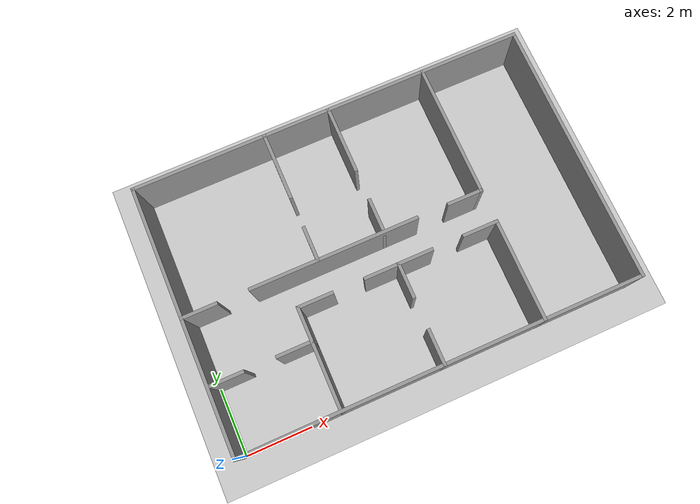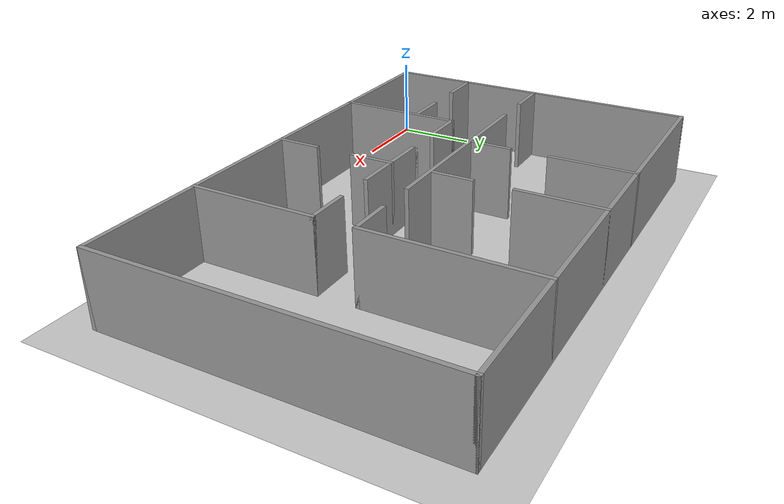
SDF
<sdf version="1.6">
 <world name="default">
  <include><uri>model://sun</uri></include>
  <include><uri>model://ground_plane</uri></include>
  <model name="wall_1">
   <pose>6 0 0.9 0 0 0</pose>
   <link name="link">
    <inertial>
     <mass>1</mass>
     <inertia>
      <ixx>0.166667</ixx>
      <ixy>0</ixy>
      <ixz>0</ixz>
      <iyy>0.166667</iyy>
      <iyz>0</iyz>
      <izz>0.166667</izz>
     </inertia>
    </inertial>
    <visual name="visual">
     <geometry><box><size>12.1 0.1 1.8</size></box></geometry>
     <material>
      <script><name>Gazebo/Grey</name><uri>file://media/materials/scripts/gazebo.material</uri></script>
      <ambient>0.3 0.3 0.3 1</ambient>
      <diffuse>0.7 0.7 0.7 1</diffuse>
      <specular>0.01 0.01 0.01 1</specular>
      <emissive>0 0 0 1</emissive>
      <shader type="vertex"><normal_map>__default__</normal_map></shader>
     </material>
    </visual>
    <collision name="collision">
     <geometry><box><size>12.1 0.1 1.8</size></box></geometry>
     <surface>
      <friction>
       <ode><mu>1</mu><mu2>1</mu2><fdir1>0 0 0</fdir1><slip1>0</slip1><slip2>0</slip2></ode>
       <torsional>
        <coefficient>1</coefficient>
        <patch_radius>0</patch_radius>
        <surface_radius>0</surface_radius>
        <use_patch_radius>1</use_patch_radius>
        <ode><slip>0</slip></ode>
       </torsional>
      </friction>
      <bounce><restitution_coefficient>0</restitution_coefficient><threshold>1e+06</threshold></bounce>
      <contact>
       <collide_without_contact>0</collide_without_contact>
       <collide_without_contact_bitmask>1</collide_without_contact_bitmask>
       <collide_bitmask>1</collide_bitmask>
       <ode>
        <soft_cfm>0</soft_cfm>
        <soft_erp>0.2</soft_erp>
        <kp>1e+13</kp>
        <kd>1</kd>
        <max_vel>0.01</max_vel>
        <min_depth>0</min_depth>
       </ode>
       <bullet>
        <split_impulse>1</split_impulse>
        <split_impulse_penetration_threshold>-0.01</split_impulse_penetration_threshold>
        <soft_cfm>0</soft_cfm>
        <soft_erp>0.2</soft_erp>
        <kp>1e+13</kp>
        <kd>1</kd>
       </bullet>
      </contact>
     </surface>
    </collision>
   </link>
   <static>1</static>
  </model>
  <model name="wall_2">
   <pose>0.5 2 0.9 0 0 0</pose>
   <link name="link">
    <inertial>
     <mass>1</mass>
     <inertia>
      <ixx>0.166667</ixx>
      <ixy>0</ixy>
      <ixz>0</ixz>
      <iyy>0.166667</iyy>
      <iyz>0</iyz>
      <izz>0.166667</izz>
     </inertia>
    </inertial>
    <visual name="visual">
     <geometry><box><size>1.1 0.1 1.8</size></box></geometry>
     <material>
      <script><name>Gazebo/Grey</name><uri>file://media/materials/scripts/gazebo.material</uri></script>
      <ambient>0.3 0.3 0.3 1</ambient>
      <diffuse>0.7 0.7 0.7 1</diffuse>
      <specular>0.01 0.01 0.01 1</specular>
      <emissive>0 0 0 1</emissive>
      <shader type="vertex"><normal_map>__default__</normal_map></shader>
     </material>
    </visual>
    <collision name="collision">
     <geometry><box><size>1.1 0.1 1.8</size></box></geometry>
     <surface>
      <friction>
       <ode><mu>1</mu><mu2>1</mu2><fdir1>0 0 0</fdir1><slip1>0</slip1><slip2>0</slip2></ode>
       <torsional>
        <coefficient>1</coefficient>
        <patch_radius>0</patch_radius>
        <surface_radius>0</surface_radius>
        <use_patch_radius>1</use_patch_radius>
        <ode><slip>0</slip></ode>
       </torsional>
      </friction>
      <bounce><restitution_coefficient>0</restitution_coefficient><threshold>1e+06</threshold></bounce>
      <contact>
       <collide_without_contact>0</collide_without_contact>
       <collide_without_contact_bitmask>1</collide_without_contact_bitmask>
       <collide_bitmask>1</collide_bitmask>
       <ode>
        <soft_cfm>0</soft_cfm>
        <soft_erp>0.2</soft_erp>
        <kp>1e+13</kp>
        <kd>1</kd>
        <max_vel>0.01</max_vel>
        <min_depth>0</min_depth>
       </ode>
       <bullet>
        <split_impulse>1</split_impulse>
        <split_impulse_penetration_threshold>-0.01</split_impulse_penetration_threshold>
        <soft_cfm>0</soft_cfm>
        <soft_erp>0.2</soft_erp>
        <kp>1e+13</kp>
        <kd>1</kd>
       </bullet>
      </contact>
     </surface>
    </collision>
   </link>
   <static>1</static>
  </model>
  <model name="wall_3">
   <pose>2.5 2 0.9 0 0 0</pose>
   <link name="link">
    <inertial>
     <mass>1</mass>
     <inertia>
      <ixx>0.166667</ixx>
      <ixy>0</ixy>
      <ixz>0</ixz>
      <iyy>0.166667</iyy>
      <iyz>0</iyz>
      <izz>0.166667</izz>
     </inertia>
    </inertial>
    <visual name="visual">
     <geometry><box><size>1.1 0.1 1.8</size></box></geometry>
     <material>
      <script><name>Gazebo/Grey</name><uri>file://media/materials/scripts/gazebo.material</uri></script>
      <ambient>0.3 0.3 0.3 1</ambient>
      <diffuse>0.7 0.7 0.7 1</diffuse>
      <specular>0.01 0.01 0.01 1</specular>
      <emissive>0 0 0 1</emissive>
      <shader type="vertex"><normal_map>__default__</normal_map></shader>
     </material>
    </visual>
    <collision name="collision">
     <geometry><box><size>1.1 0.1 1.8</size></box></geometry>
     <surface>
      <friction>
       <ode><mu>1</mu><mu2>1</mu2><fdir1>0 0 0</fdir1><slip1>0</slip1><slip2>0</slip2></ode>
       <torsional>
        <coefficient>1</coefficient>
        <patch_radius>0</patch_radius>
        <surface_radius>0</surface_radius>
        <use_patch_radius>1</use_patch_radius>
        <ode><slip>0</slip></ode>
       </torsional>
      </friction>
      <bounce><restitution_coefficient>0</restitution_coefficient><threshold>1e+06</threshold></bounce>
      <contact>
       <collide_without_contact>0</collide_without_contact>
       <collide_without_contact_bitmask>1</collide_without_contact_bitmask>
       <collide_bitmask>1</collide_bitmask>
       <ode>
        <soft_cfm>0</soft_cfm>
        <soft_erp>0.2</soft_erp>
        <kp>1e+13</kp>
        <kd>1</kd>
        <max_vel>0.01</max_vel>
        <min_depth>0</min_depth>
       </ode>
       <bullet>
        <split_impulse>1</split_impulse>
        <split_impulse_penetration_threshold>-0.01</split_impulse_penetration_threshold>
        <soft_cfm>0</soft_cfm>
        <soft_erp>0.2</soft_erp>
        <kp>1e+13</kp>
        <kd>1</kd>
       </bullet>
      </contact>
     </surface>
    </collision>
   </link>
   <static>1</static>
  </model>
  <model name="wall_4">
   <pose>3.5 3 0.9 0 0 0</pose>
   <link name="link">
    <inertial>
     <mass>1</mass>
     <inertia>
      <ixx>0.166667</ixx>
      <ixy>0</ixy>
      <ixz>0</ixz>
      <iyy>0.166667</iyy>
      <iyz>0</iyz>
      <izz>0.166667</izz>
     </inertia>
    </inertial>
    <visual name="visual">
     <geometry><box><size>1.1 0.1 1.8</size></box></geometry>
     <material>
      <script><name>Gazebo/Grey</name><uri>file://media/materials/scripts/gazebo.material</uri></script>
      <ambient>0.3 0.3 0.3 1</ambient>
      <diffuse>0.7 0.7 0.7 1</diffuse>
      <specular>0.01 0.01 0.01 1</specular>
      <emissive>0 0 0 1</emissive>
      <shader type="vertex"><normal_map>__default__</normal_map></shader>
     </material>
    </visual>
    <collision name="collision">
     <geometry><box><size>1.1 0.1 1.8</size></box></geometry>
     <surface>
      <friction>
       <ode><mu>1</mu><mu2>1</mu2><fdir1>0 0 0</fdir1><slip1>0</slip1><slip2>0</slip2></ode>
       <torsional>
        <coefficient>1</coefficient>
        <patch_radius>0</patch_radius>
        <surface_radius>0</surface_radius>
        <use_patch_radius>1</use_patch_radius>
        <ode><slip>0</slip></ode>
       </torsional>
      </friction>
      <bounce><restitution_coefficient>0</restitution_coefficient><threshold>1e+06</threshold></bounce>
      <contact>
       <collide_without_contact>0</collide_without_contact>
       <collide_without_contact_bitmask>1</collide_without_contact_bitmask>
       <collide_bitmask>1</collide_bitmask>
       <ode>
        <soft_cfm>0</soft_cfm>
        <soft_erp>0.2</soft_erp>
        <kp>1e+13</kp>
        <kd>1</kd>
        <max_vel>0.01</max_vel>
        <min_depth>0</min_depth>
       </ode>
       <bullet>
        <split_impulse>1</split_impulse>
        <split_impulse_penetration_threshold>-0.01</split_impulse_penetration_threshold>
        <soft_cfm>0</soft_cfm>
        <soft_erp>0.2</soft_erp>
        <kp>1e+13</kp>
        <kd>1</kd>
       </bullet>
      </contact>
     </surface>
    </collision>
   </link>
   <static>1</static>
  </model>
  <model name="wall_5">
   <pose>6 3 0.9 0 0 0</pose>
   <link name="link">
    <inertial>
     <mass>1</mass>
     <inertia>
      <ixx>0.166667</ixx>
      <ixy>0</ixy>
      <ixz>0</ixz>
      <iyy>0.166667</iyy>
      <iyz>0</iyz>
      <izz>0.166667</izz>
     </inertia>
    </inertial>
    <visual name="visual">
     <geometry><box><size>2.1 0.1 1.8</size></box></geometry>
     <material>
      <script><name>Gazebo/Grey</name><uri>file://media/materials/scripts/gazebo.material</uri></script>
      <ambient>0.3 0.3 0.3 1</ambient>
      <diffuse>0.7 0.7 0.7 1</diffuse>
      <specular>0.01 0.01 0.01 1</specular>
      <emissive>0 0 0 1</emissive>
      <shader type="vertex"><normal_map>__default__</normal_map></shader>
     </material>
    </visual>
    <collision name="collision">
     <geometry><box><size>2.1 0.1 1.8</size></box></geometry>
     <surface>
      <friction>
       <ode><mu>1</mu><mu2>1</mu2><fdir1>0 0 0</fdir1><slip1>0</slip1><slip2>0</slip2></ode>
       <torsional>
        <coefficient>1</coefficient>
        <patch_radius>0</patch_radius>
        <surface_radius>0</surface_radius>
        <use_patch_radius>1</use_patch_radius>
        <ode><slip>0</slip></ode>
       </torsional>
      </friction>
      <bounce><restitution_coefficient>0</restitution_coefficient><threshold>1e+06</threshold></bounce>
      <contact>
       <collide_without_contact>0</collide_without_contact>
       <collide_without_contact_bitmask>1</collide_without_contact_bitmask>
       <collide_bitmask>1</collide_bitmask>
       <ode>
        <soft_cfm>0</soft_cfm>
        <soft_erp>0.2</soft_erp>
        <kp>1e+13</kp>
        <kd>1</kd>
        <max_vel>0.01</max_vel>
        <min_depth>0</min_depth>
       </ode>
       <bullet>
        <split_impulse>1</split_impulse>
        <split_impulse_penetration_threshold>-0.01</split_impulse_penetration_threshold>
        <soft_cfm>0</soft_cfm>
        <soft_erp>0.2</soft_erp>
        <kp>1e+13</kp>
        <kd>1</kd>
       </bullet>
      </contact>
     </surface>
    </collision>
   </link>
   <static>1</static>
  </model>
  <model name="wall_6">
   <pose>8.5 3 0.9 0 0 0</pose>
   <link name="link">
    <inertial>
     <mass>1</mass>
     <inertia>
      <ixx>0.166667</ixx>
      <ixy>0</ixy>
      <ixz>0</ixz>
      <iyy>0.166667</iyy>
      <iyz>0</iyz>
      <izz>0.166667</izz>
     </inertia>
    </inertial>
    <visual name="visual">
     <geometry><box><size>1.1 0.1 1.8</size></box></geometry>
     <material>
      <script><name>Gazebo/Grey</name><uri>file://media/materials/scripts/gazebo.material</uri></script>
      <ambient>0.3 0.3 0.3 1</ambient>
      <diffuse>0.7 0.7 0.7 1</diffuse>
      <specular>0.01 0.01 0.01 1</specular>
      <emissive>0 0 0 1</emissive>
      <shader type="vertex"><normal_map>__default__</normal_map></shader>
     </material>
    </visual>
    <collision name="collision">
     <geometry><box><size>1.1 0.1 1.8</size></box></geometry>
     <surface>
      <friction>
       <ode><mu>1</mu><mu2>1</mu2><fdir1>0 0 0</fdir1><slip1>0</slip1><slip2>0</slip2></ode>
       <torsional>
        <coefficient>1</coefficient>
        <patch_radius>0</patch_radius>
        <surface_radius>0</surface_radius>
        <use_patch_radius>1</use_patch_radius>
        <ode><slip>0</slip></ode>
       </torsional>
      </friction>
      <bounce><restitution_coefficient>0</restitution_coefficient><threshold>1e+06</threshold></bounce>
      <contact>
       <collide_without_contact>0</collide_without_contact>
       <collide_without_contact_bitmask>1</collide_without_contact_bitmask>
       <collide_bitmask>1</collide_bitmask>
       <ode>
        <soft_cfm>0</soft_cfm>
        <soft_erp>0.2</soft_erp>
        <kp>1e+13</kp>
        <kd>1</kd>
        <max_vel>0.01</max_vel>
        <min_depth>0</min_depth>
       </ode>
       <bullet>
        <split_impulse>1</split_impulse>
        <split_impulse_penetration_threshold>-0.01</split_impulse_penetration_threshold>
        <soft_cfm>0</soft_cfm>
        <soft_erp>0.2</soft_erp>
        <kp>1e+13</kp>
        <kd>1</kd>
       </bullet>
      </contact>
     </surface>
    </collision>
   </link>
   <static>1</static>
  </model>
  <model name="wall_7">
   <pose>0.5 4 0.9 0 0 0</pose>
   <link name="link">
    <inertial>
     <mass>1</mass>
     <inertia>
      <ixx>0.166667</ixx>
      <ixy>0</ixy>
      <ixz>0</ixz>
      <iyy>0.166667</iyy>
      <iyz>0</iyz>
      <izz>0.166667</izz>
     </inertia>
    </inertial>
    <visual name="visual">
     <geometry><box><size>1.1 0.1 1.8</size></box></geometry>
     <material>
      <script><name>Gazebo/Grey</name><uri>file://media/materials/scripts/gazebo.material</uri></script>
      <ambient>0.3 0.3 0.3 1</ambient>
      <diffuse>0.7 0.7 0.7 1</diffuse>
      <specular>0.01 0.01 0.01 1</specular>
      <emissive>0 0 0 1</emissive>
      <shader type="vertex"><normal_map>__default__</normal_map></shader>
     </material>
    </visual>
    <collision name="collision">
     <geometry><box><size>1.1 0.1 1.8</size></box></geometry>
     <surface>
      <friction>
       <ode><mu>1</mu><mu2>1</mu2><fdir1>0 0 0</fdir1><slip1>0</slip1><slip2>0</slip2></ode>
       <torsional>
        <coefficient>1</coefficient>
        <patch_radius>0</patch_radius>
        <surface_radius>0</surface_radius>
        <use_patch_radius>1</use_patch_radius>
        <ode><slip>0</slip></ode>
       </torsional>
      </friction>
      <bounce><restitution_coefficient>0</restitution_coefficient><threshold>1e+06</threshold></bounce>
      <contact>
       <collide_without_contact>0</collide_without_contact>
       <collide_without_contact_bitmask>1</collide_without_contact_bitmask>
       <collide_bitmask>1</collide_bitmask>
       <ode>
        <soft_cfm>0</soft_cfm>
        <soft_erp>0.2</soft_erp>
        <kp>1e+13</kp>
        <kd>1</kd>
        <max_vel>0.01</max_vel>
        <min_depth>0</min_depth>
       </ode>
       <bullet>
        <split_impulse>1</split_impulse>
        <split_impulse_penetration_threshold>-0.01</split_impulse_penetration_threshold>
        <soft_cfm>0</soft_cfm>
        <soft_erp>0.2</soft_erp>
        <kp>1e+13</kp>
        <kd>1</kd>
       </bullet>
      </contact>
     </surface>
    </collision>
   </link>
   <static>1</static>
  </model>
  <model name="wall_8">
   <pose>4.5 4 0.9 0 0 0</pose>
   <link name="link">
    <inertial>
     <mass>1</mass>
     <inertia>
      <ixx>0.166667</ixx>
      <ixy>0</ixy>
      <ixz>0</ixz>
      <iyy>0.166667</iyy>
      <iyz>0</iyz>
      <izz>0.166667</izz>
     </inertia>
    </inertial>
    <visual name="visual">
     <geometry><box><size>5.1 0.1 1.8</size></box></geometry>
     <material>
      <script><name>Gazebo/Grey</name><uri>file://media/materials/scripts/gazebo.material</uri></script>
      <ambient>0.3 0.3 0.3 1</ambient>
      <diffuse>0.7 0.7 0.7 1</diffuse>
      <specular>0.01 0.01 0.01 1</specular>
      <emissive>0 0 0 1</emissive>
      <shader type="vertex"><normal_map>__default__</normal_map></shader>
     </material>
    </visual>
    <collision name="collision">
     <geometry><box><size>5.1 0.1 1.8</size></box></geometry>
     <surface>
      <friction>
       <ode><mu>1</mu><mu2>1</mu2><fdir1>0 0 0</fdir1><slip1>0</slip1><slip2>0</slip2></ode>
       <torsional>
        <coefficient>1</coefficient>
        <patch_radius>0</patch_radius>
        <surface_radius>0</surface_radius>
        <use_patch_radius>1</use_patch_radius>
        <ode><slip>0</slip></ode>
       </torsional>
      </friction>
      <bounce><restitution_coefficient>0</restitution_coefficient><threshold>1e+06</threshold></bounce>
      <contact>
       <collide_without_contact>0</collide_without_contact>
       <collide_without_contact_bitmask>1</collide_without_contact_bitmask>
       <collide_bitmask>1</collide_bitmask>
       <ode>
        <soft_cfm>0</soft_cfm>
        <soft_erp>0.2</soft_erp>
        <kp>1e+13</kp>
        <kd>1</kd>
        <max_vel>0.01</max_vel>
        <min_depth>0</min_depth>
       </ode>
       <bullet>
        <split_impulse>1</split_impulse>
        <split_impulse_penetration_threshold>-0.01</split_impulse_penetration_threshold>
        <soft_cfm>0</soft_cfm>
        <soft_erp>0.2</soft_erp>
        <kp>1e+13</kp>
        <kd>1</kd>
       </bullet>
      </contact>
     </surface>
    </collision>
   </link>
   <static>1</static>
  </model>
  <model name="wall_9">
   <pose>8.5 4 0.9 0 0 0</pose>
   <link name="link">
    <inertial>
     <mass>1</mass>
     <inertia>
      <ixx>0.166667</ixx>
      <ixy>0</ixy>
      <ixz>0</ixz>
      <iyy>0.166667</iyy>
      <iyz>0</iyz>
      <izz>0.166667</izz>
     </inertia>
    </inertial>
    <visual name="visual">
     <geometry><box><size>1.1 0.1 1.8</size></box></geometry>
     <material>
      <script><name>Gazebo/Grey</name><uri>file://media/materials/scripts/gazebo.material</uri></script>
      <ambient>0.3 0.3 0.3 1</ambient>
      <diffuse>0.7 0.7 0.7 1</diffuse>
      <specular>0.01 0.01 0.01 1</specular>
      <emissive>0 0 0 1</emissive>
      <shader type="vertex"><normal_map>__default__</normal_map></shader>
     </material>
    </visual>
    <collision name="collision">
     <geometry><box><size>1.1 0.1 1.8</size></box></geometry>
     <surface>
      <friction>
       <ode><mu>1</mu><mu2>1</mu2><fdir1>0 0 0</fdir1><slip1>0</slip1><slip2>0</slip2></ode>
       <torsional>
        <coefficient>1</coefficient>
        <patch_radius>0</patch_radius>
        <surface_radius>0</surface_radius>
        <use_patch_radius>1</use_patch_radius>
        <ode><slip>0</slip></ode>
       </torsional>
      </friction>
      <bounce><restitution_coefficient>0</restitution_coefficient><threshold>1e+06</threshold></bounce>
      <contact>
       <collide_without_contact>0</collide_without_contact>
       <collide_without_contact_bitmask>1</collide_without_contact_bitmask>
       <collide_bitmask>1</collide_bitmask>
       <ode>
        <soft_cfm>0</soft_cfm>
        <soft_erp>0.2</soft_erp>
        <kp>1e+13</kp>
        <kd>1</kd>
        <max_vel>0.01</max_vel>
        <min_depth>0</min_depth>
       </ode>
       <bullet>
        <split_impulse>1</split_impulse>
        <split_impulse_penetration_threshold>-0.01</split_impulse_penetration_threshold>
        <soft_cfm>0</soft_cfm>
        <soft_erp>0.2</soft_erp>
        <kp>1e+13</kp>
        <kd>1</kd>
       </bullet>
      </contact>
     </surface>
    </collision>
   </link>
   <static>1</static>
  </model>
  <model name="wall_10">
   <pose>6 8 0.9 0 0 0</pose>
   <link name="link">
    <inertial>
     <mass>1</mass>
     <inertia>
      <ixx>0.166667</ixx>
      <ixy>0</ixy>
      <ixz>0</ixz>
      <iyy>0.166667</iyy>
      <iyz>0</iyz>
      <izz>0.166667</izz>
     </inertia>
    </inertial>
    <visual name="visual">
     <geometry><box><size>12.1 0.1 1.8</size></box></geometry>
     <material>
      <script><name>Gazebo/Grey</name><uri>file://media/materials/scripts/gazebo.material</uri></script>
      <ambient>0.3 0.3 0.3 1</ambient>
      <diffuse>0.7 0.7 0.7 1</diffuse>
      <specular>0.01 0.01 0.01 1</specular>
      <emissive>0 0 0 1</emissive>
      <shader type="vertex"><normal_map>__default__</normal_map></shader>
     </material>
    </visual>
    <collision name="collision">
     <geometry><box><size>12.1 0.1 1.8</size></box></geometry>
     <surface>
      <friction>
       <ode><mu>1</mu><mu2>1</mu2><fdir1>0 0 0</fdir1><slip1>0</slip1><slip2>0</slip2></ode>
       <torsional>
        <coefficient>1</coefficient>
        <patch_radius>0</patch_radius>
        <surface_radius>0</surface_radius>
        <use_patch_radius>1</use_patch_radius>
        <ode><slip>0</slip></ode>
       </torsional>
      </friction>
      <bounce><restitution_coefficient>0</restitution_coefficient><threshold>1e+06</threshold></bounce>
      <contact>
       <collide_without_contact>0</collide_without_contact>
       <collide_without_contact_bitmask>1</collide_without_contact_bitmask>
       <collide_bitmask>1</collide_bitmask>
       <ode>
        <soft_cfm>0</soft_cfm>
        <soft_erp>0.2</soft_erp>
        <kp>1e+13</kp>
        <kd>1</kd>
        <max_vel>0.01</max_vel>
        <min_depth>0</min_depth>
       </ode>
       <bullet>
        <split_impulse>1</split_impulse>
        <split_impulse_penetration_threshold>-0.01</split_impulse_penetration_threshold>
        <soft_cfm>0</soft_cfm>
        <soft_erp>0.2</soft_erp>
        <kp>1e+13</kp>
        <kd>1</kd>
       </bullet>
      </contact>
     </surface>
    </collision>
   </link>
   <static>1</static>
  </model>
  <model name="wall_11">
   <pose>0 4 0.9 0 0 1.5707963267949</pose>
   <link name="link">
    <inertial>
     <mass>1</mass>
     <inertia>
      <ixx>0.166667</ixx>
      <ixy>0</ixy>
      <ixz>0</ixz>
      <iyy>0.166667</iyy>
      <iyz>0</iyz>
      <izz>0.166667</izz>
     </inertia>
    </inertial>
    <visual name="visual">
     <geometry><box><size>8.1 0.1 1.8</size></box></geometry>
     <material>
      <script><name>Gazebo/Grey</name><uri>file://media/materials/scripts/gazebo.material</uri></script>
      <ambient>0.3 0.3 0.3 1</ambient>
      <diffuse>0.7 0.7 0.7 1</diffuse>
      <specular>0.01 0.01 0.01 1</specular>
      <emissive>0 0 0 1</emissive>
      <shader type="vertex"><normal_map>__default__</normal_map></shader>
     </material>
    </visual>
    <collision name="collision">
     <geometry><box><size>8.1 0.1 1.8</size></box></geometry>
     <surface>
      <friction>
       <ode><mu>1</mu><mu2>1</mu2><fdir1>0 0 0</fdir1><slip1>0</slip1><slip2>0</slip2></ode>
       <torsional>
        <coefficient>1</coefficient>
        <patch_radius>0</patch_radius>
        <surface_radius>0</surface_radius>
        <use_patch_radius>1</use_patch_radius>
        <ode><slip>0</slip></ode>
       </torsional>
      </friction>
      <bounce><restitution_coefficient>0</restitution_coefficient><threshold>1e+06</threshold></bounce>
      <contact>
       <collide_without_contact>0</collide_without_contact>
       <collide_without_contact_bitmask>1</collide_without_contact_bitmask>
       <collide_bitmask>1</collide_bitmask>
       <ode>
        <soft_cfm>0</soft_cfm>
        <soft_erp>0.2</soft_erp>
        <kp>1e+13</kp>
        <kd>1</kd>
        <max_vel>0.01</max_vel>
        <min_depth>0</min_depth>
       </ode>
       <bullet>
        <split_impulse>1</split_impulse>
        <split_impulse_penetration_threshold>-0.01</split_impulse_penetration_threshold>
        <soft_cfm>0</soft_cfm>
        <soft_erp>0.2</soft_erp>
        <kp>1e+13</kp>
        <kd>1</kd>
       </bullet>
      </contact>
     </surface>
    </collision>
   </link>
   <static>1</static>
  </model>
  <model name="wall_12">
   <pose>3 1.5 0.9 0 0 1.5707963267949</pose>
   <link name="link">
    <inertial>
     <mass>1</mass>
     <inertia>
      <ixx>0.166667</ixx>
      <ixy>0</ixy>
      <ixz>0</ixz>
      <iyy>0.166667</iyy>
      <iyz>0</iyz>
      <izz>0.166667</izz>
     </inertia>
    </inertial>
    <visual name="visual">
     <geometry><box><size>3.1 0.1 1.8</size></box></geometry>
     <material>
      <script><name>Gazebo/Grey</name><uri>file://media/materials/scripts/gazebo.material</uri></script>
      <ambient>0.3 0.3 0.3 1</ambient>
      <diffuse>0.7 0.7 0.7 1</diffuse>
      <specular>0.01 0.01 0.01 1</specular>
      <emissive>0 0 0 1</emissive>
      <shader type="vertex"><normal_map>__default__</normal_map></shader>
     </material>
    </visual>
    <collision name="collision">
     <geometry><box><size>3.1 0.1 1.8</size></box></geometry>
     <surface>
      <friction>
       <ode><mu>1</mu><mu2>1</mu2><fdir1>0 0 0</fdir1><slip1>0</slip1><slip2>0</slip2></ode>
       <torsional>
        <coefficient>1</coefficient>
        <patch_radius>0</patch_radius>
        <surface_radius>0</surface_radius>
        <use_patch_radius>1</use_patch_radius>
        <ode><slip>0</slip></ode>
       </torsional>
      </friction>
      <bounce><restitution_coefficient>0</restitution_coefficient><threshold>1e+06</threshold></bounce>
      <contact>
       <collide_without_contact>0</collide_without_contact>
       <collide_without_contact_bitmask>1</collide_without_contact_bitmask>
       <collide_bitmask>1</collide_bitmask>
       <ode>
        <soft_cfm>0</soft_cfm>
        <soft_erp>0.2</soft_erp>
        <kp>1e+13</kp>
        <kd>1</kd>
        <max_vel>0.01</max_vel>
        <min_depth>0</min_depth>
       </ode>
       <bullet>
        <split_impulse>1</split_impulse>
        <split_impulse_penetration_threshold>-0.01</split_impulse_penetration_threshold>
        <soft_cfm>0</soft_cfm>
        <soft_erp>0.2</soft_erp>
        <kp>1e+13</kp>
        <kd>1</kd>
       </bullet>
      </contact>
     </surface>
    </collision>
   </link>
   <static>1</static>
  </model>
  <model name="wall_13">
   <pose>4 4.5 0.9 0 0 1.5707963267949</pose>
   <link name="link">
    <inertial>
     <mass>1</mass>
     <inertia>
      <ixx>0.166667</ixx>
      <ixy>0</ixy>
      <ixz>0</ixz>
      <iyy>0.166667</iyy>
      <iyz>0</iyz>
      <izz>0.166667</izz>
     </inertia>
    </inertial>
    <visual name="visual">
     <geometry><box><size>1.1 0.1 1.8</size></box></geometry>
     <material>
      <script><name>Gazebo/Grey</name><uri>file://media/materials/scripts/gazebo.material</uri></script>
      <ambient>0.3 0.3 0.3 1</ambient>
      <diffuse>0.7 0.7 0.7 1</diffuse>
      <specular>0.01 0.01 0.01 1</specular>
      <emissive>0 0 0 1</emissive>
      <shader type="vertex"><normal_map>__default__</normal_map></shader>
     </material>
    </visual>
    <collision name="collision">
     <geometry><box><size>1.1 0.1 1.8</size></box></geometry>
     <surface>
      <friction>
       <ode><mu>1</mu><mu2>1</mu2><fdir1>0 0 0</fdir1><slip1>0</slip1><slip2>0</slip2></ode>
       <torsional>
        <coefficient>1</coefficient>
        <patch_radius>0</patch_radius>
        <surface_radius>0</surface_radius>
        <use_patch_radius>1</use_patch_radius>
        <ode><slip>0</slip></ode>
       </torsional>
      </friction>
      <bounce><restitution_coefficient>0</restitution_coefficient><threshold>1e+06</threshold></bounce>
      <contact>
       <collide_without_contact>0</collide_without_contact>
       <collide_without_contact_bitmask>1</collide_without_contact_bitmask>
       <collide_bitmask>1</collide_bitmask>
       <ode>
        <soft_cfm>0</soft_cfm>
        <soft_erp>0.2</soft_erp>
        <kp>1e+13</kp>
        <kd>1</kd>
        <max_vel>0.01</max_vel>
        <min_depth>0</min_depth>
       </ode>
       <bullet>
        <split_impulse>1</split_impulse>
        <split_impulse_penetration_threshold>-0.01</split_impulse_penetration_threshold>
        <soft_cfm>0</soft_cfm>
        <soft_erp>0.2</soft_erp>
        <kp>1e+13</kp>
        <kd>1</kd>
       </bullet>
      </contact>
     </surface>
    </collision>
   </link>
   <static>1</static>
  </model>
  <model name="wall_14">
   <pose>4 7 0.9 0 0 1.5707963267949</pose>
   <link name="link">
    <inertial>
     <mass>1</mass>
     <inertia>
      <ixx>0.166667</ixx>
      <ixy>0</ixy>
      <ixz>0</ixz>
      <iyy>0.166667</iyy>
      <iyz>0</iyz>
      <izz>0.166667</izz>
     </inertia>
    </inertial>
    <visual name="visual">
     <geometry><box><size>2.1 0.1 1.8</size></box></geometry>
     <material>
      <script><name>Gazebo/Grey</name><uri>file://media/materials/scripts/gazebo.material</uri></script>
      <ambient>0.3 0.3 0.3 1</ambient>
      <diffuse>0.7 0.7 0.7 1</diffuse>
      <specular>0.01 0.01 0.01 1</specular>
      <emissive>0 0 0 1</emissive>
      <shader type="vertex"><normal_map>__default__</normal_map></shader>
     </material>
    </visual>
    <collision name="collision">
     <geometry><box><size>2.1 0.1 1.8</size></box></geometry>
     <surface>
      <friction>
       <ode><mu>1</mu><mu2>1</mu2><fdir1>0 0 0</fdir1><slip1>0</slip1><slip2>0</slip2></ode>
       <torsional>
        <coefficient>1</coefficient>
        <patch_radius>0</patch_radius>
        <surface_radius>0</surface_radius>
        <use_patch_radius>1</use_patch_radius>
        <ode><slip>0</slip></ode>
       </torsional>
      </friction>
      <bounce><restitution_coefficient>0</restitution_coefficient><threshold>1e+06</threshold></bounce>
      <contact>
       <collide_without_contact>0</collide_without_contact>
       <collide_without_contact_bitmask>1</collide_without_contact_bitmask>
       <collide_bitmask>1</collide_bitmask>
       <ode>
        <soft_cfm>0</soft_cfm>
        <soft_erp>0.2</soft_erp>
        <kp>1e+13</kp>
        <kd>1</kd>
        <max_vel>0.01</max_vel>
        <min_depth>0</min_depth>
       </ode>
       <bullet>
        <split_impulse>1</split_impulse>
        <split_impulse_penetration_threshold>-0.01</split_impulse_penetration_threshold>
        <soft_cfm>0</soft_cfm>
        <soft_erp>0.2</soft_erp>
        <kp>1e+13</kp>
        <kd>1</kd>
       </bullet>
      </contact>
     </surface>
    </collision>
   </link>
   <static>1</static>
  </model>
  <model name="wall_15">
   <pose>6 0.5 0.9 0 0 1.5707963267949</pose>
   <link name="link">
    <inertial>
     <mass>1</mass>
     <inertia>
      <ixx>0.166667</ixx>
      <ixy>0</ixy>
      <ixz>0</ixz>
      <iyy>0.166667</iyy>
      <iyz>0</iyz>
      <izz>0.166667</izz>
     </inertia>
    </inertial>
    <visual name="visual">
     <geometry><box><size>1.1 0.1 1.8</size></box></geometry>
     <material>
      <script><name>Gazebo/Grey</name><uri>file://media/materials/scripts/gazebo.material</uri></script>
      <ambient>0.3 0.3 0.3 1</ambient>
      <diffuse>0.7 0.7 0.7 1</diffuse>
      <specular>0.01 0.01 0.01 1</specular>
      <emissive>0 0 0 1</emissive>
      <shader type="vertex"><normal_map>__default__</normal_map></shader>
     </material>
    </visual>
    <collision name="collision">
     <geometry><box><size>1.1 0.1 1.8</size></box></geometry>
     <surface>
      <friction>
       <ode><mu>1</mu><mu2>1</mu2><fdir1>0 0 0</fdir1><slip1>0</slip1><slip2>0</slip2></ode>
       <torsional>
        <coefficient>1</coefficient>
        <patch_radius>0</patch_radius>
        <surface_radius>0</surface_radius>
        <use_patch_radius>1</use_patch_radius>
        <ode><slip>0</slip></ode>
       </torsional>
      </friction>
      <bounce><restitution_coefficient>0</restitution_coefficient><threshold>1e+06</threshold></bounce>
      <contact>
       <collide_without_contact>0</collide_without_contact>
       <collide_without_contact_bitmask>1</collide_without_contact_bitmask>
       <collide_bitmask>1</collide_bitmask>
       <ode>
        <soft_cfm>0</soft_cfm>
        <soft_erp>0.2</soft_erp>
        <kp>1e+13</kp>
        <kd>1</kd>
        <max_vel>0.01</max_vel>
        <min_depth>0</min_depth>
       </ode>
       <bullet>
        <split_impulse>1</split_impulse>
        <split_impulse_penetration_threshold>-0.01</split_impulse_penetration_threshold>
        <soft_cfm>0</soft_cfm>
        <soft_erp>0.2</soft_erp>
        <kp>1e+13</kp>
        <kd>1</kd>
       </bullet>
      </contact>
     </surface>
    </collision>
   </link>
   <static>1</static>
  </model>
  <model name="wall_16">
   <pose>6 2.5 0.9 0 0 1.5707963267949</pose>
   <link name="link">
    <inertial>
     <mass>1</mass>
     <inertia>
      <ixx>0.166667</ixx>
      <ixy>0</ixy>
      <ixz>0</ixz>
      <iyy>0.166667</iyy>
      <iyz>0</iyz>
      <izz>0.166667</izz>
     </inertia>
    </inertial>
    <visual name="visual">
     <geometry><box><size>1.1 0.1 1.8</size></box></geometry>
     <material>
      <script><name>Gazebo/Grey</name><uri>file://media/materials/scripts/gazebo.material</uri></script>
      <ambient>0.3 0.3 0.3 1</ambient>
      <diffuse>0.7 0.7 0.7 1</diffuse>
      <specular>0.01 0.01 0.01 1</specular>
      <emissive>0 0 0 1</emissive>
      <shader type="vertex"><normal_map>__default__</normal_map></shader>
     </material>
    </visual>
    <collision name="collision">
     <geometry><box><size>1.1 0.1 1.8</size></box></geometry>
     <surface>
      <friction>
       <ode><mu>1</mu><mu2>1</mu2><fdir1>0 0 0</fdir1><slip1>0</slip1><slip2>0</slip2></ode>
       <torsional>
        <coefficient>1</coefficient>
        <patch_radius>0</patch_radius>
        <surface_radius>0</surface_radius>
        <use_patch_radius>1</use_patch_radius>
        <ode><slip>0</slip></ode>
       </torsional>
      </friction>
      <bounce><restitution_coefficient>0</restitution_coefficient><threshold>1e+06</threshold></bounce>
      <contact>
       <collide_without_contact>0</collide_without_contact>
       <collide_without_contact_bitmask>1</collide_without_contact_bitmask>
       <collide_bitmask>1</collide_bitmask>
       <ode>
        <soft_cfm>0</soft_cfm>
        <soft_erp>0.2</soft_erp>
        <kp>1e+13</kp>
        <kd>1</kd>
        <max_vel>0.01</max_vel>
        <min_depth>0</min_depth>
       </ode>
       <bullet>
        <split_impulse>1</split_impulse>
        <split_impulse_penetration_threshold>-0.01</split_impulse_penetration_threshold>
        <soft_cfm>0</soft_cfm>
        <soft_erp>0.2</soft_erp>
        <kp>1e+13</kp>
        <kd>1</kd>
       </bullet>
      </contact>
     </surface>
    </collision>
   </link>
   <static>1</static>
  </model>
  <model name="wall_17">
   <pose>6 4.5 0.9 0 0 1.5707963267949</pose>
   <link name="link">
    <inertial>
     <mass>1</mass>
     <inertia>
      <ixx>0.166667</ixx>
      <ixy>0</ixy>
      <ixz>0</ixz>
      <iyy>0.166667</iyy>
      <iyz>0</iyz>
      <izz>0.166667</izz>
     </inertia>
    </inertial>
    <visual name="visual">
     <geometry><box><size>1.1 0.1 1.8</size></box></geometry>
     <material>
      <script><name>Gazebo/Grey</name><uri>file://media/materials/scripts/gazebo.material</uri></script>
      <ambient>0.3 0.3 0.3 1</ambient>
      <diffuse>0.7 0.7 0.7 1</diffuse>
      <specular>0.01 0.01 0.01 1</specular>
      <emissive>0 0 0 1</emissive>
      <shader type="vertex"><normal_map>__default__</normal_map></shader>
     </material>
    </visual>
    <collision name="collision">
     <geometry><box><size>1.1 0.1 1.8</size></box></geometry>
     <surface>
      <friction>
       <ode><mu>1</mu><mu2>1</mu2><fdir1>0 0 0</fdir1><slip1>0</slip1><slip2>0</slip2></ode>
       <torsional>
        <coefficient>1</coefficient>
        <patch_radius>0</patch_radius>
        <surface_radius>0</surface_radius>
        <use_patch_radius>1</use_patch_radius>
        <ode><slip>0</slip></ode>
       </torsional>
      </friction>
      <bounce><restitution_coefficient>0</restitution_coefficient><threshold>1e+06</threshold></bounce>
      <contact>
       <collide_without_contact>0</collide_without_contact>
       <collide_without_contact_bitmask>1</collide_without_contact_bitmask>
       <collide_bitmask>1</collide_bitmask>
       <ode>
        <soft_cfm>0</soft_cfm>
        <soft_erp>0.2</soft_erp>
        <kp>1e+13</kp>
        <kd>1</kd>
        <max_vel>0.01</max_vel>
        <min_depth>0</min_depth>
       </ode>
       <bullet>
        <split_impulse>1</split_impulse>
        <split_impulse_penetration_threshold>-0.01</split_impulse_penetration_threshold>
        <soft_cfm>0</soft_cfm>
        <soft_erp>0.2</soft_erp>
        <kp>1e+13</kp>
        <kd>1</kd>
       </bullet>
      </contact>
     </surface>
    </collision>
   </link>
   <static>1</static>
  </model>
  <model name="wall_18">
   <pose>6 7 0.9 0 0 1.5707963267949</pose>
   <link name="link">
    <inertial>
     <mass>1</mass>
     <inertia>
      <ixx>0.166667</ixx>
      <ixy>0</ixy>
      <ixz>0</ixz>
      <iyy>0.166667</iyy>
      <iyz>0</iyz>
      <izz>0.166667</izz>
     </inertia>
    </inertial>
    <visual name="visual">
     <geometry><box><size>2.1 0.1 1.8</size></box></geometry>
     <material>
      <script><name>Gazebo/Grey</name><uri>file://media/materials/scripts/gazebo.material</uri></script>
      <ambient>0.3 0.3 0.3 1</ambient>
      <diffuse>0.7 0.7 0.7 1</diffuse>
      <specular>0.01 0.01 0.01 1</specular>
      <emissive>0 0 0 1</emissive>
      <shader type="vertex"><normal_map>__default__</normal_map></shader>
     </material>
    </visual>
    <collision name="collision">
     <geometry><box><size>2.1 0.1 1.8</size></box></geometry>
     <surface>
      <friction>
       <ode><mu>1</mu><mu2>1</mu2><fdir1>0 0 0</fdir1><slip1>0</slip1><slip2>0</slip2></ode>
       <torsional>
        <coefficient>1</coefficient>
        <patch_radius>0</patch_radius>
        <surface_radius>0</surface_radius>
        <use_patch_radius>1</use_patch_radius>
        <ode><slip>0</slip></ode>
       </torsional>
      </friction>
      <bounce><restitution_coefficient>0</restitution_coefficient><threshold>1e+06</threshold></bounce>
      <contact>
       <collide_without_contact>0</collide_without_contact>
       <collide_without_contact_bitmask>1</collide_without_contact_bitmask>
       <collide_bitmask>1</collide_bitmask>
       <ode>
        <soft_cfm>0</soft_cfm>
        <soft_erp>0.2</soft_erp>
        <kp>1e+13</kp>
        <kd>1</kd>
        <max_vel>0.01</max_vel>
        <min_depth>0</min_depth>
       </ode>
       <bullet>
        <split_impulse>1</split_impulse>
        <split_impulse_penetration_threshold>-0.01</split_impulse_penetration_threshold>
        <soft_cfm>0</soft_cfm>
        <soft_erp>0.2</soft_erp>
        <kp>1e+13</kp>
        <kd>1</kd>
       </bullet>
      </contact>
     </surface>
    </collision>
   </link>
   <static>1</static>
  </model>
  <model name="wall_19">
   <pose>9 1.5 0.9 0 0 1.5707963267949</pose>
   <link name="link">
    <inertial>
     <mass>1</mass>
     <inertia>
      <ixx>0.166667</ixx>
      <ixy>0</ixy>
      <ixz>0</ixz>
      <iyy>0.166667</iyy>
      <iyz>0</iyz>
      <izz>0.166667</izz>
     </inertia>
    </inertial>
    <visual name="visual">
     <geometry><box><size>3.1 0.1 1.8</size></box></geometry>
     <material>
      <script><name>Gazebo/Grey</name><uri>file://media/materials/scripts/gazebo.material</uri></script>
      <ambient>0.3 0.3 0.3 1</ambient>
      <diffuse>0.7 0.7 0.7 1</diffuse>
      <specular>0.01 0.01 0.01 1</specular>
      <emissive>0 0 0 1</emissive>
      <shader type="vertex"><normal_map>__default__</normal_map></shader>
     </material>
    </visual>
    <collision name="collision">
     <geometry><box><size>3.1 0.1 1.8</size></box></geometry>
     <surface>
      <friction>
       <ode><mu>1</mu><mu2>1</mu2><fdir1>0 0 0</fdir1><slip1>0</slip1><slip2>0</slip2></ode>
       <torsional>
        <coefficient>1</coefficient>
        <patch_radius>0</patch_radius>
        <surface_radius>0</surface_radius>
        <use_patch_radius>1</use_patch_radius>
        <ode><slip>0</slip></ode>
       </torsional>
      </friction>
      <bounce><restitution_coefficient>0</restitution_coefficient><threshold>1e+06</threshold></bounce>
      <contact>
       <collide_without_contact>0</collide_without_contact>
       <collide_without_contact_bitmask>1</collide_without_contact_bitmask>
       <collide_bitmask>1</collide_bitmask>
       <ode>
        <soft_cfm>0</soft_cfm>
        <soft_erp>0.2</soft_erp>
        <kp>1e+13</kp>
        <kd>1</kd>
        <max_vel>0.01</max_vel>
        <min_depth>0</min_depth>
       </ode>
       <bullet>
        <split_impulse>1</split_impulse>
        <split_impulse_penetration_threshold>-0.01</split_impulse_penetration_threshold>
        <soft_cfm>0</soft_cfm>
        <soft_erp>0.2</soft_erp>
        <kp>1e+13</kp>
        <kd>1</kd>
       </bullet>
      </contact>
     </surface>
    </collision>
   </link>
   <static>1</static>
  </model>
  <model name="wall_20">
   <pose>9 6 0.9 0 0 1.5707963267949</pose>
   <link name="link">
    <inertial>
     <mass>1</mass>
     <inertia>
      <ixx>0.166667</ixx>
      <ixy>0</ixy>
      <ixz>0</ixz>
      <iyy>0.166667</iyy>
      <iyz>0</iyz>
      <izz>0.166667</izz>
     </inertia>
    </inertial>
    <visual name="visual">
     <geometry><box><size>4.1 0.1 1.8</size></box></geometry>
     <material>
      <script><name>Gazebo/Grey</name><uri>file://media/materials/scripts/gazebo.material</uri></script>
      <ambient>0.3 0.3 0.3 1</ambient>
      <diffuse>0.7 0.7 0.7 1</diffuse>
      <specular>0.01 0.01 0.01 1</specular>
      <emissive>0 0 0 1</emissive>
      <shader type="vertex"><normal_map>__default__</normal_map></shader>
     </material>
    </visual>
    <collision name="collision">
     <geometry><box><size>4.1 0.1 1.8</size></box></geometry>
     <surface>
      <friction>
       <ode><mu>1</mu><mu2>1</mu2><fdir1>0 0 0</fdir1><slip1>0</slip1><slip2>0</slip2></ode>
       <torsional>
        <coefficient>1</coefficient>
        <patch_radius>0</patch_radius>
        <surface_radius>0</surface_radius>
        <use_patch_radius>1</use_patch_radius>
        <ode><slip>0</slip></ode>
       </torsional>
      </friction>
      <bounce><restitution_coefficient>0</restitution_coefficient><threshold>1e+06</threshold></bounce>
      <contact>
       <collide_without_contact>0</collide_without_contact>
       <collide_without_contact_bitmask>1</collide_without_contact_bitmask>
       <collide_bitmask>1</collide_bitmask>
       <ode>
        <soft_cfm>0</soft_cfm>
        <soft_erp>0.2</soft_erp>
        <kp>1e+13</kp>
        <kd>1</kd>
        <max_vel>0.01</max_vel>
        <min_depth>0</min_depth>
       </ode>
       <bullet>
        <split_impulse>1</split_impulse>
        <split_impulse_penetration_threshold>-0.01</split_impulse_penetration_threshold>
        <soft_cfm>0</soft_cfm>
        <soft_erp>0.2</soft_erp>
        <kp>1e+13</kp>
        <kd>1</kd>
       </bullet>
      </contact>
     </surface>
    </collision>
   </link>
   <static>1</static>
  </model>
  <model name="wall_21">
   <pose>12 4 0.9 0 0 1.5707963267949</pose>
   <link name="link">
    <inertial>
     <mass>1</mass>
     <inertia>
      <ixx>0.166667</ixx>
      <ixy>0</ixy>
      <ixz>0</ixz>
      <iyy>0.166667</iyy>
      <iyz>0</iyz>
      <izz>0.166667</izz>
     </inertia>
    </inertial>
    <visual name="visual">
     <geometry><box><size>8.1 0.1 1.8</size></box></geometry>
     <material>
      <script><name>Gazebo/Grey</name><uri>file://media/materials/scripts/gazebo.material</uri></script>
      <ambient>0.3 0.3 0.3 1</ambient>
      <diffuse>0.7 0.7 0.7 1</diffuse>
      <specular>0.01 0.01 0.01 1</specular>
      <emissive>0 0 0 1</emissive>
      <shader type="vertex"><normal_map>__default__</normal_map></shader>
     </material>
    </visual>
    <collision name="collision">
     <geometry><box><size>8.1 0.1 1.8</size></box></geometry>
     <surface>
      <friction>
       <ode><mu>1</mu><mu2>1</mu2><fdir1>0 0 0</fdir1><slip1>0</slip1><slip2>0</slip2></ode>
       <torsional>
        <coefficient>1</coefficient>
        <patch_radius>0</patch_radius>
        <surface_radius>0</surface_radius>
        <use_patch_radius>1</use_patch_radius>
        <ode><slip>0</slip></ode>
       </torsional>
      </friction>
      <bounce><restitution_coefficient>0</restitution_coefficient><threshold>1e+06</threshold></bounce>
      <contact>
       <collide_without_contact>0</collide_without_contact>
       <collide_without_contact_bitmask>1</collide_without_contact_bitmask>
       <collide_bitmask>1</collide_bitmask>
       <ode>
        <soft_cfm>0</soft_cfm>
        <soft_erp>0.2</soft_erp>
        <kp>1e+13</kp>
        <kd>1</kd>
        <max_vel>0.01</max_vel>
        <min_depth>0</min_depth>
       </ode>
       <bullet>
        <split_impulse>1</split_impulse>
        <split_impulse_penetration_threshold>-0.01</split_impulse_penetration_threshold>
        <soft_cfm>0</soft_cfm>
        <soft_erp>0.2</soft_erp>
        <kp>1e+13</kp>
        <kd>1</kd>
       </bullet>
      </contact>
     </surface>
    </collision>
   </link>
   <static>1</static>
  </model>
 </world>
</sdf>
